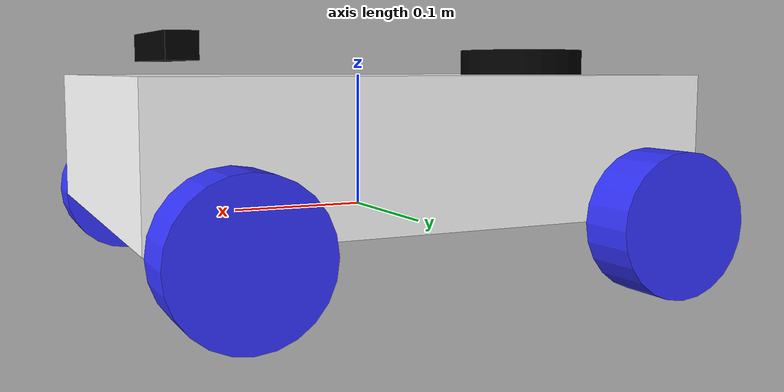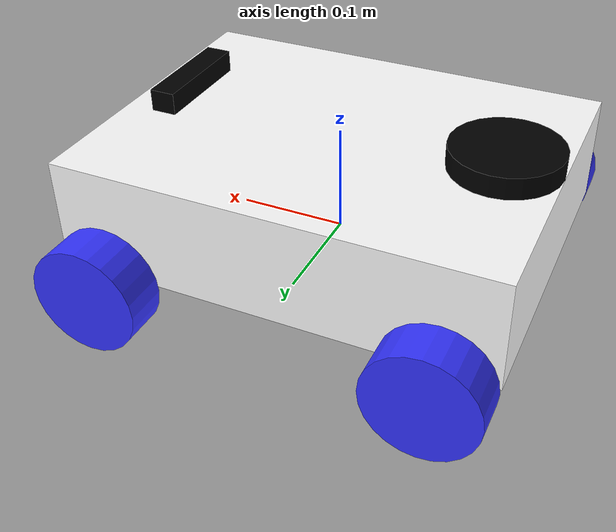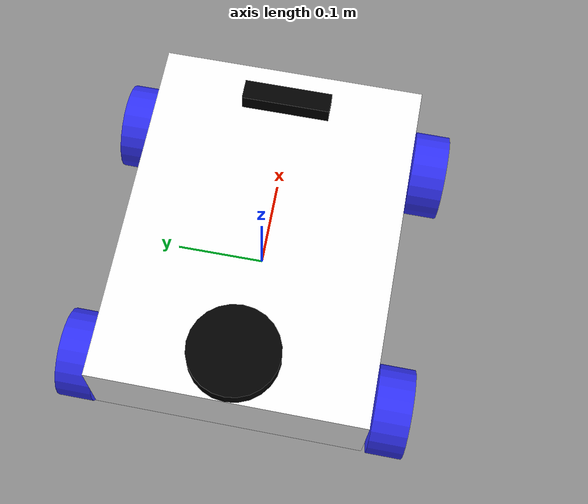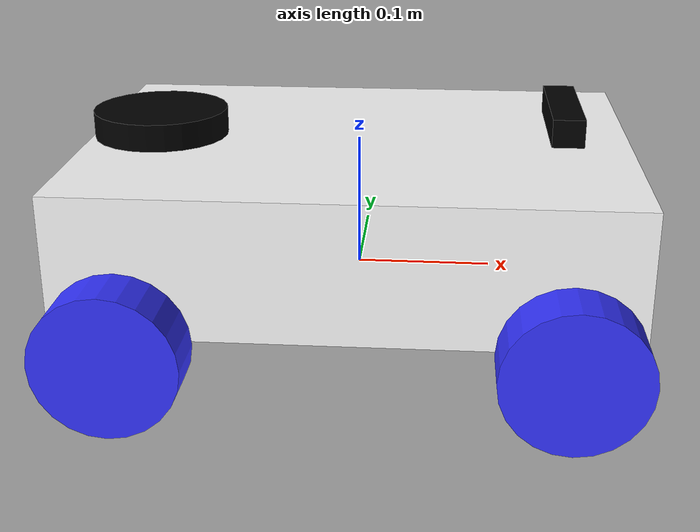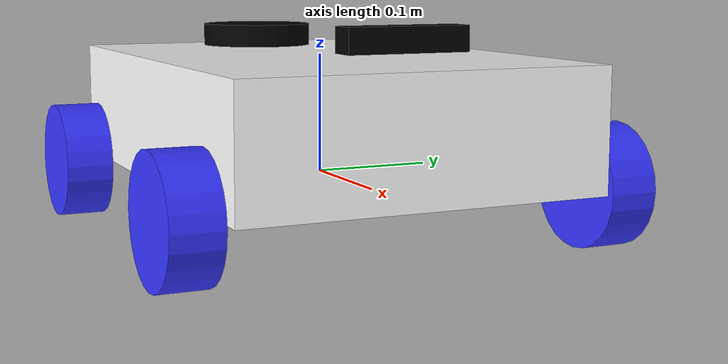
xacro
<?xml version="1.0"?>
<robot xmlns:xacro="http://www.ros.org/wiki/xacro" >

    <xacro:property name="pi" value="3.1415926535897931" />

    <xacro:include filename="inertial_macros.xacro"/>

    <material name="white">
        <color rgba="1 1 1 1" />
    </material>

    <material name="orange">
        <color rgba="1 0.3 0.1 1"/>
    </material>

    <material name="blue">
        <color rgba="0.2 0.2 1 1"/>
    </material>

    <material name="black">
        <color rgba="0 0 0 1"/>
    </material>

    <!-- BASE LINK -->
    <!-- The base_link is the conceptual center of the robot.
         Its +X axis should define the robot's forward direction. -->
    <link name="base_link">
    </link>

    <!-- CHASSIS LINK -->
    <joint name="chassis_joint" type="fixed">
        <parent link="base_link"/>
        <child link="chassis"/>
        <origin xyz="-0.2 0 0" rpy="0 0 0"/> <!-- Assuming base_link is "in front" of chassis center -->
    </joint>

    <link name="chassis">
        <visual>
            <origin xyz="0.2 0 0.05"/> <!-- This origin is relative to the 'chassis' frame -->
            <geometry>
                <box size="0.4 0.3 0.1"/>
            </geometry>
            <material name="white"/>
        </visual>
        <collision>
            <origin xyz="0.2 0 0.05"/>
            <geometry>
                <box size="0.4 0.3 0.1"/>
            </geometry>
        </collision>
        <xacro:inertial_box mass="0.5" x="0.4" y="0.3" z="0.1">
            <origin xyz="0.2 0 0.05" rpy="0 0 0"/>
        </xacro:inertial_box>
    </link>

    <!-- LIDAR LINK -->
    <joint name="lidar_joint" type="fixed">
        <parent link="chassis"/>
        <child link="lidar_link"/>
        <origin xyz="0.05 0 0.1" rpy="0 0 ${pi}"/> <!-- ROTATED 180 DEGREES AROUND Z-AXIS -->
    </joint>

    <link name="lidar_link">
        <visual>
            <geometry>
                <cylinder radius="0.05" length="0.04"/>
            </geometry>
            <material name="black"/>
        </visual>
        <collision>
            <geometry>
                <cylinder radius="0.05" length="0.04"/>
            </geometry>
        </collision>
        <xacro:inertial_cylinder mass="0.1" length="0.04" radius="0.05">
            <origin xyz="0 0 0" rpy="0 0 0"/>
        </xacro:inertial_cylinder>
    </link>

    <!-- CAMERA LINK (Intel D405) -->
    <joint name="camera_joint" type="fixed"> <!-- Or name="d405_base_joint" -->
        <parent link="chassis"/>
        <child link="camera_link"/> <!-- THIS MUST BE "camera_link" to match realsense node -->
        <!-- !!! CRITICAL: MEASURE AND SET THESE XYZ AND RPY VALUES ACCURATELY !!! -->
        <!-- Example: D405 mounted 0.35m forward, 0.12m up from chassis origin, no tilt -->
        <origin xyz="0.35 0 0.12" rpy="0 0 0"/>
    </joint>

    <link name="camera_link"> <!-- This frame is the base of the D405 camera body -->
        <visual>
            <!-- Assuming camera_link's +X is forward (depth), +Y is left (width), +Z is up (height) -->
            <origin xyz="0 0 0" rpy="0 0 0"/> <!-- Visual origin relative to camera_link origin -->
            <geometry>
                <box size="0.023 0.099 0.020"/>
            </geometry>
            <material name="black"/>
        </visual>
        <collision>
            <origin xyz="0 0 0" rpy="0 0 0"/>
            <geometry>
                <box size="0.023 0.099 0.020"/>
            </geometry>
        </collision>
        <xacro:inertial_box mass="0.07" x="0.023" y="0.099" z="0.020"> <!-- mass approx 70g -->
            <origin xyz="0 0 0" rpy="0 0 0"/> <!-- Inertial origin relative to camera_link origin -->
        </xacro:inertial_box>
    </link>

    <!-- WHEEL LINKS -->

    <!-- LEFT WHEEL LINK -->
    <joint name="left_wheel_joint" type="continuous">
        <parent link="base_link"/>
        <child link="left_wheel"/>
        <origin xyz="-0.15 0.175 0" rpy="-${pi/2} 0 0" />
        <axis xyz="0 0 1"/>
    </joint>

    <link name="left_wheel">
        <visual>
            <geometry>
                <cylinder radius="0.05" length="0.04"/>
            </geometry>
            <material name="blue"/>
        </visual>
        <collision>
            <geometry>
                <cylinder radius="0.05" length="0.04"/>
            </geometry>
        </collision>
        <xacro:inertial_cylinder mass="0.1" length="0.04" radius="0.05">
            <origin xyz="0 0 0" rpy="0 0 0"/>
        </xacro:inertial_cylinder>
    </link>

    <!-- RIGHT WHEEL LINK -->
    <joint name="right_wheel_joint" type="continuous">
        <parent link="base_link"/>
        <child link="right_wheel"/>
        <origin xyz="-0.15 -0.175 0" rpy="${pi/2} 0 0" /> <!-- Note: Original had rpy="${pi/2} 0 0" which is fine -->
        <axis xyz="0 0 -1"/>
    </joint>

    <link name="right_wheel">
        <visual>
            <geometry>
                <cylinder radius="0.05" length="0.04"/>
            </geometry>
            <material name="blue"/>
        </visual>
        <collision>
            <geometry>
                <cylinder radius="0.05" length="0.04"/>
            </geometry>
        </collision>
        <xacro:inertial_cylinder mass="0.1" length="0.04" radius="0.05">
            <origin xyz="0 0 0" rpy="0 0 0"/>
        </xacro:inertial_cylinder>
    </link>

    <!-- FRONT LEFT WHEEL LINK -->
    <joint name="front_left_wheel_joint" type="continuous">
        <parent link="base_link"/>
        <child link="front_left_wheel"/>
        <origin xyz="0.15 0.175 0" rpy="-${pi/2} 0 0" />
        <axis xyz="0 0 1"/>
    </joint>

    <link name="front_left_wheel">
        <visual>
            <geometry>
                <cylinder radius="0.05" length="0.04"/>
            </geometry>
            <material name="blue"/>
        </visual>
        <collision>
            <geometry>
                <cylinder radius="0.05" length="0.04"/>
            </geometry>
        </collision>
        <xacro:inertial_cylinder mass="0.1" length="0.04" radius="0.05">
            <origin xyz="0 0 0" rpy="0 0 0"/>
        </xacro:inertial_cylinder>
    </link>

    <!-- FRONT RIGHT WHEEL LINK -->
    <joint name="front_right_wheel_joint" type="continuous">
        <parent link="base_link"/>
        <child link="front_right_wheel"/>
        <origin xyz="0.15 -0.175 0" rpy="${pi/2} 0 0" /> <!-- Note: Original had rpy="${pi/2} 0 0" -->
        <axis xyz="0 0 -1"/>
    </joint>

    <link name="front_right_wheel">
        <visual>
            <geometry>
                <cylinder radius="0.05" length="0.04"/>
            </geometry>
            <material name="blue"/>
        </visual>
        <collision>
            <geometry>
                <cylinder radius="0.05" length="0.04"/>
            </geometry>
        </collision>
        <xacro:inertial_cylinder mass="0.1" length="0.04" radius="0.05">
            <origin xyz="0 0 0" rpy="0 0 0"/>
        </xacro:inertial_cylinder>
    </link>

</robot>
